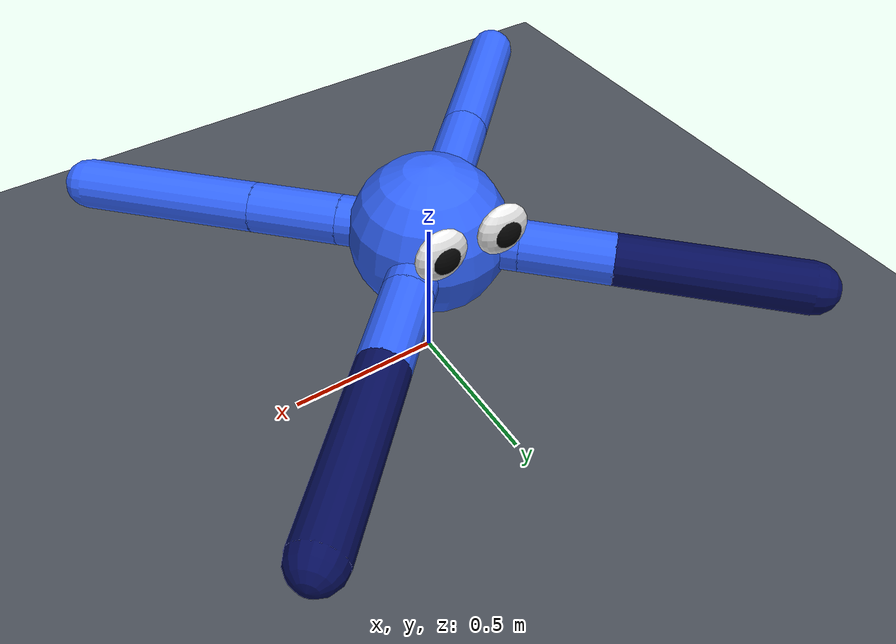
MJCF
<mujoco model="single_ant">
  <compiler angle="degree" coordinate="local" inertiafromgeom="true"/>
  <option timestep="0.00833333" integrator="RK4">
    <flag eulerdamp="disable"/>
  </option>

  <default>
    <default class="ant">
      <joint armature="0.01" damping="0" limited="true" type="hinge"/>
      <geom condim="3" density="5.0" friction="1 0.5 0.5" margin="0.01"
            size="0.08" type="capsule" contype="1" conaffinity="2" rgba="0.2 0.4 1.0 1"/>
      <default class="front">
        <geom rgba="0.02 0.05 0.35 1"/>
      </default>
      <!-- Eyes: render-only, like the Isaac play scripts' decorate_ants(). No collision bits
           and zero mass, so the dynamics are exactly those of the eyeless model. -->
      <default class="eye">
        <geom type="ellipsoid" contype="0" conaffinity="0" mass="0" rgba="0.95 0.95 0.95 1"/>
      </default>
      <default class="pupil">
        <geom type="ellipsoid" contype="0" conaffinity="0" mass="0" rgba="0.02 0.02 0.02 1"/>
      </default>
    </default>
  </default>

  <asset>
    <texture type="skybox" builtin="gradient" rgb1="0.5 0.7 0.9" rgb2="0.1 0.15 0.25"
             width="256" height="256"/>
    <texture name="grid" type="2d" builtin="checker" rgb1="0.25 0.27 0.30"
             rgb2="0.32 0.34 0.38" width="300" height="300" mark="edge" markrgb="0.5 0.5 0.5"/>
    <material name="grid" texture="grid" texrepeat="12 12" texuniform="true" reflectance="0.1"/>
  </asset>

  <worldbody>
    <light name="light" pos="0 0 12" dir="0 0 -1" diffuse="0.8 0.8 0.8" castshadow="false"/>
    <geom name="floor" type="plane" pos="0 0 0" size="40 40 0.1" material="grid"
          contype="3" conaffinity="3" condim="3" friction="1 0.5 0.5"/>

    <body name="torso" pos="0 0 0.5" childclass="ant">
      <freejoint name="root"/>
      <geom name="torso_geom" type="sphere" size="0.25"/>
      <!-- Eyes on the upper front (+y) of the torso: flattened white domes with black pupils,
           at ant_visuals.py's EYE_OFFSETS / EYE_RADIUS / EYE_DEPTH_SCALE. -->
      <geom name="eye_l" class="eye" pos="-0.105 0.228 0.13" size="0.085 0.03825 0.085"/>
      <geom name="eye_r" class="eye" pos="0.105 0.228 0.13" size="0.085 0.03825 0.085"/>
      <geom name="pupil_l" class="pupil" pos="-0.105 0.256688 0.13" size="0.045 0.02025 0.045"/>
      <geom name="pupil_r" class="pupil" pos="0.105 0.256688 0.13" size="0.045 0.02025 0.045"/>
      <body name="fl_leg">
        <geom fromto="0 0 0 0.2 0.2 0"/>
        <body name="fl_aux" pos="0.2 0.2 0">
          <joint name="front_left_leg" axis="0 0 1" range="-40 40"/>
          <geom fromto="0 0 0 0.2 0.2 0"/>
          <body name="front_left_foot_body" pos="0.2 0.2 0">
            <joint name="front_left_foot" axis="-1 1 0" range="30 100"/>
            <geom class="front" fromto="0 0 0 0.4 0.4 0"/>
          </body>
        </body>
      </body>
      <body name="fr_leg">
        <geom fromto="0 0 0 -0.2 0.2 0"/>
        <body name="fr_aux" pos="-0.2 0.2 0">
          <joint name="front_right_leg" axis="0 0 1" range="-40 40"/>
          <geom fromto="0 0 0 -0.2 0.2 0"/>
          <body name="front_right_foot_body" pos="-0.2 0.2 0">
            <joint name="front_right_foot" axis="1 1 0" range="-100 -30"/>
            <geom class="front" fromto="0 0 0 -0.4 0.4 0"/>
          </body>
        </body>
      </body>
      <body name="lb_leg">
        <geom fromto="0 0 0 -0.2 -0.2 0"/>
        <body name="lb_aux" pos="-0.2 -0.2 0">
          <joint name="left_back_leg" axis="0 0 1" range="-40 40"/>
          <geom fromto="0 0 0 -0.2 -0.2 0"/>
          <body name="left_back_foot_body" pos="-0.2 -0.2 0">
            <joint name="left_back_foot" axis="-1 1 0" range="-100 -30"/>
            <geom fromto="0 0 0 -0.4 -0.4 0"/>
          </body>
        </body>
      </body>
      <body name="rb_leg">
        <geom fromto="0 0 0 0.2 -0.2 0"/>
        <body name="rb_aux" pos="0.2 -0.2 0">
          <joint name="right_back_leg" axis="0 0 1" range="-40 40"/>
          <geom fromto="0 0 0 0.2 -0.2 0"/>
          <body name="right_back_foot_body" pos="0.2 -0.2 0">
            <joint name="right_back_foot" axis="1 1 0" range="30 100"/>
            <geom fromto="0 0 0 0.4 -0.4 0"/>
          </body>
        </body>
      </body>
    </body>
    <!-- SCENE -->
  </worldbody>
  <!-- CONTACT -->

  <actuator>
    <motor name="front_left_leg"   joint="front_left_leg"   gear="1" ctrllimited="false"/>
    <motor name="front_right_leg"  joint="front_right_leg"  gear="1" ctrllimited="false"/>
    <motor name="left_back_leg"    joint="left_back_leg"    gear="1" ctrllimited="false"/>
    <motor name="right_back_leg"   joint="right_back_leg"   gear="1" ctrllimited="false"/>
    <motor name="front_left_foot"  joint="front_left_foot"  gear="1" ctrllimited="false"/>
    <motor name="front_right_foot" joint="front_right_foot" gear="1" ctrllimited="false"/>
    <motor name="left_back_foot"   joint="left_back_foot"   gear="1" ctrllimited="false"/>
    <motor name="right_back_foot"  joint="right_back_foot"  gear="1" ctrllimited="false"/>
  </actuator>
</mujoco>
